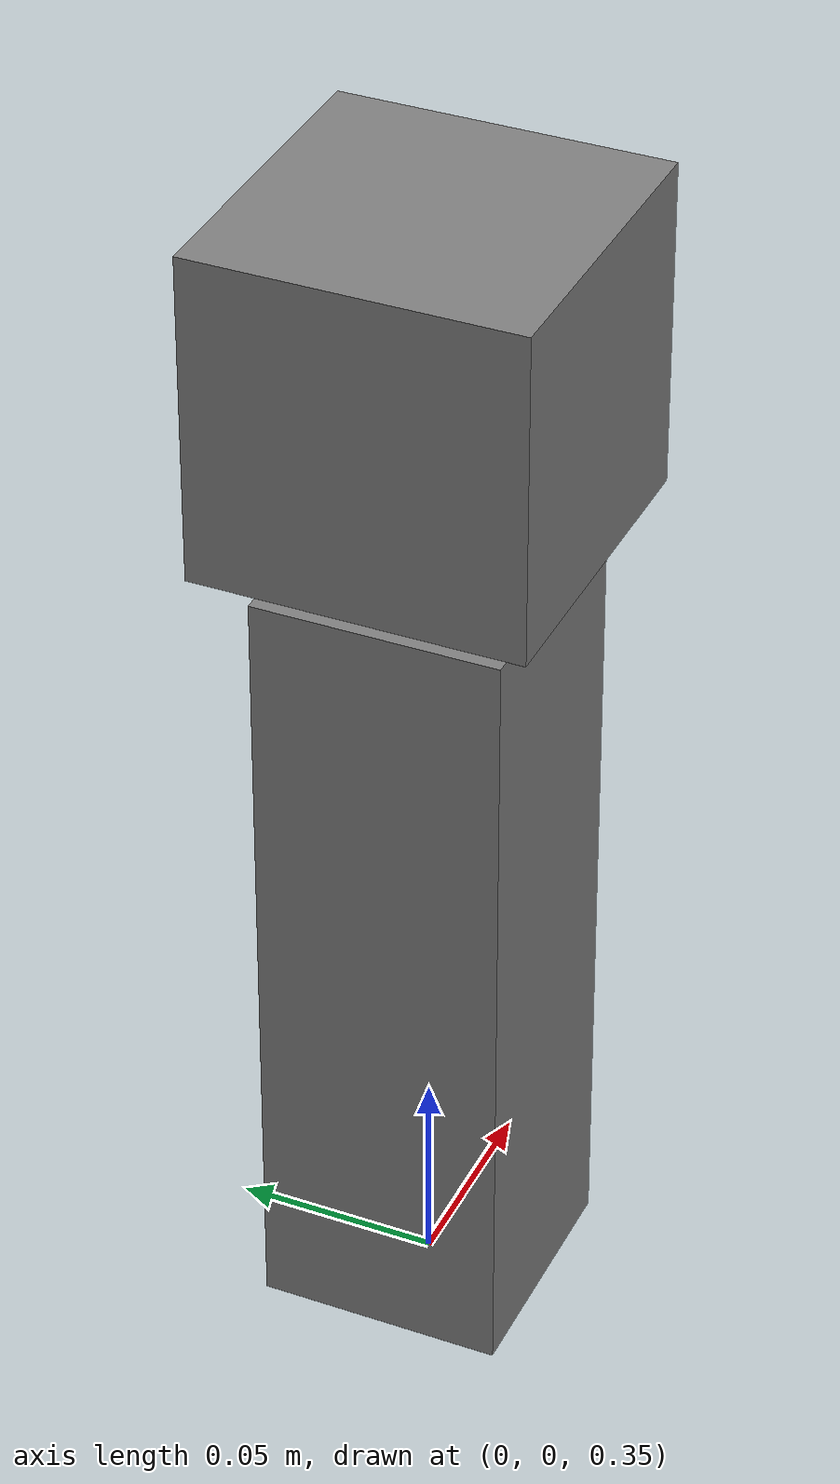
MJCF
<mujoco model="isaac-torque-inherited-bias-rig">
  <compiler angle="radian" autolimits="true"/>
  <default>
    <geom friction="1 .005 .0001"/>
    <default class="positional"><position kp="50" dampratio="1"/></default>
  </default>
  <worldbody>
    <geom name="floor" type="box" size="2 2 0.05" pos="0 0 -0.05"/>
    <body name="base" pos="0 0 0.6">
      <geom name="base_box" type="box" size="0.04 0.04 0.04" mass="0.1"/>
      <body name="upper" pos="0 0 -0.05">
        <joint name="spare" type="hinge" axis="0 1 0" damping="0" range="-1.5 1.5"/>
        <geom name="upper_link" type="box" size="0.03 0.03 0.1" pos="0 0 -0.1" mass="0.8"/>
      </body>
    </body>
  </worldbody>
  <actuator>
    <motor name="spare_motor" joint="spare" class="positional" forcerange="-20 20"/>
  </actuator>
</mujoco>
